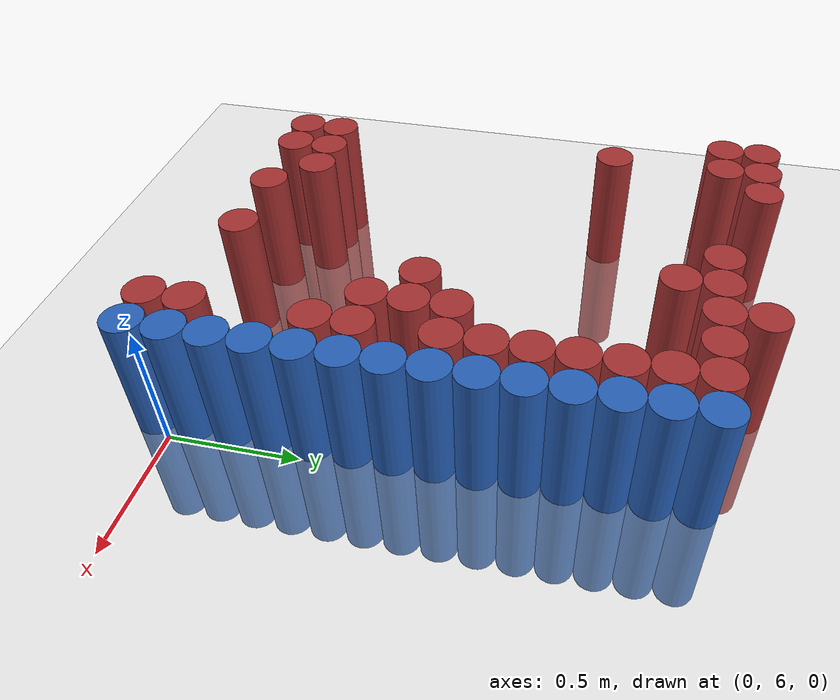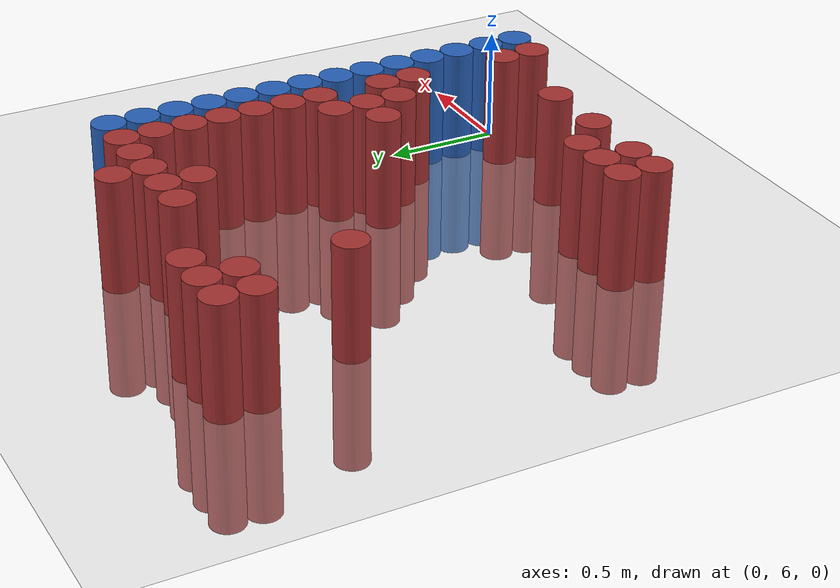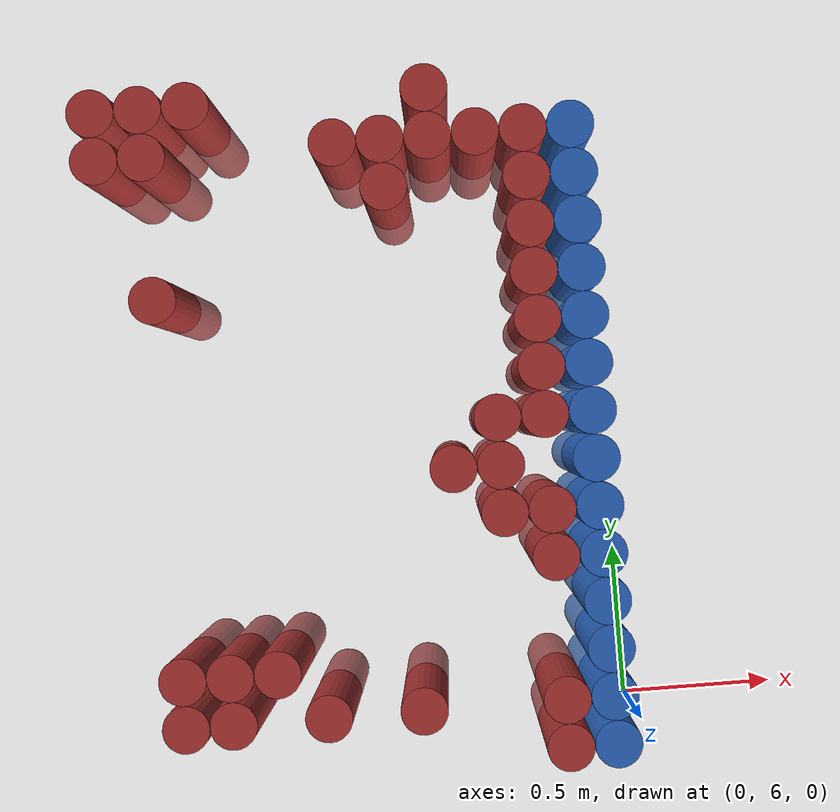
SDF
<sdf version="1.6">
 <world name="default">
  <model name="ground_plane">
   <static>1</static>
   <link name="link">
    <collision name="collision">
     <geometry><plane><normal>0 0 1</normal><size>100 100</size></plane></geometry>
     <surface><friction><ode><mu>100</mu><mu2>50</mu2></ode></friction></surface>
    </collision>
    <visual name="visual">
     <cast_shadows>0</cast_shadows>
     <geometry><plane><normal>0 0 1</normal><size>100 100</size></plane></geometry>
     <material>
      <script><uri>file://media/materials/scripts/gazebo.material</uri><name>Gazebo/Grey</name></script>
     </material>
    </visual>
   </link>
  </model>
  <model name="unit_cylinder_218">
   <static>1</static>
   <pose>-1.575000 7.875000 0.000000 0.000000 0.000000 0.000000</pose>
   <link name="link">
    <inertial>
     <mass>1</mass>
     <inertia><ixx>0.145833</ixx><ixy>0</ixy><ixz>0</ixz><iyy>0.145833</iyy><iyz>0</iyz><izz>0.125</izz></inertia>
    </inertial>
    <collision name="collision">
     <geometry><cylinder><radius>0.075000</radius><length>1</length></cylinder></geometry>
    </collision>
    <visual name="visual">
     <geometry><cylinder><radius>0.075000</radius><length>1</length></cylinder></geometry>
     <material>
      <ambient>0.648000 0.192000 0.192000 1</ambient>
      <diffuse>0.648000 0.192000 0.192000 1</diffuse>
     </material>
     <material>
      <script><name>Gazebo/Grey</name><uri>file://media/materials/scripts/gazebo.material</uri></script>
     </material>
    </visual>
   </link>
  </model>
  <model name="unit_cylinder_219">
   <static>1</static>
   <pose>-1.575000 8.025000 0.000000 0.000000 0.000000 0.000000</pose>
   <link name="link">
    <inertial>
     <mass>1</mass>
     <inertia><ixx>0.145833</ixx><ixy>0</ixy><ixz>0</ixz><iyy>0.145833</iyy><iyz>0</iyz><izz>0.125</izz></inertia>
    </inertial>
    <collision name="collision">
     <geometry><cylinder><radius>0.075000</radius><length>1</length></cylinder></geometry>
    </collision>
    <visual name="visual">
     <geometry><cylinder><radius>0.075000</radius><length>1</length></cylinder></geometry>
     <material>
      <ambient>0.648000 0.192000 0.192000 1</ambient>
      <diffuse>0.648000 0.192000 0.192000 1</diffuse>
     </material>
     <material>
      <script><name>Gazebo/Grey</name><uri>file://media/materials/scripts/gazebo.material</uri></script>
     </material>
    </visual>
   </link>
  </model>
  <model name="unit_cylinder_227">
   <static>1</static>
   <pose>-1.425000 6.075000 0.000000 0.000000 0.000000 0.000000</pose>
   <link name="link">
    <inertial>
     <mass>1</mass>
     <inertia><ixx>0.145833</ixx><ixy>0</ixy><ixz>0</ixz><iyy>0.145833</iyy><iyz>0</iyz><izz>0.125</izz></inertia>
    </inertial>
    <collision name="collision">
     <geometry><cylinder><radius>0.075000</radius><length>1</length></cylinder></geometry>
    </collision>
    <visual name="visual">
     <geometry><cylinder><radius>0.075000</radius><length>1</length></cylinder></geometry>
     <material>
      <ambient>0.648000 0.192000 0.192000 1</ambient>
      <diffuse>0.648000 0.192000 0.192000 1</diffuse>
     </material>
     <material>
      <script><name>Gazebo/Grey</name><uri>file://media/materials/scripts/gazebo.material</uri></script>
     </material>
    </visual>
   </link>
  </model>
  <model name="unit_cylinder_228">
   <static>1</static>
   <pose>-1.425000 6.225000 0.000000 0.000000 0.000000 0.000000</pose>
   <link name="link">
    <inertial>
     <mass>1</mass>
     <inertia><ixx>0.145833</ixx><ixy>0</ixy><ixz>0</ixz><iyy>0.145833</iyy><iyz>0</iyz><izz>0.125</izz></inertia>
    </inertial>
    <collision name="collision">
     <geometry><cylinder><radius>0.075000</radius><length>1</length></cylinder></geometry>
    </collision>
    <visual name="visual">
     <geometry><cylinder><radius>0.075000</radius><length>1</length></cylinder></geometry>
     <material>
      <ambient>0.648000 0.192000 0.192000 1</ambient>
      <diffuse>0.648000 0.192000 0.192000 1</diffuse>
     </material>
     <material>
      <script><name>Gazebo/Grey</name><uri>file://media/materials/scripts/gazebo.material</uri></script>
     </material>
    </visual>
   </link>
  </model>
  <model name="unit_cylinder_229">
   <static>1</static>
   <pose>-1.425000 7.425000 0.000000 0.000000 0.000000 0.000000</pose>
   <link name="link">
    <inertial>
     <mass>1</mass>
     <inertia><ixx>0.145833</ixx><ixy>0</ixy><ixz>0</ixz><iyy>0.145833</iyy><iyz>0</iyz><izz>0.125</izz></inertia>
    </inertial>
    <collision name="collision">
     <geometry><cylinder><radius>0.075000</radius><length>1</length></cylinder></geometry>
    </collision>
    <visual name="visual">
     <geometry><cylinder><radius>0.075000</radius><length>1</length></cylinder></geometry>
     <material>
      <ambient>0.648000 0.192000 0.192000 1</ambient>
      <diffuse>0.648000 0.192000 0.192000 1</diffuse>
     </material>
     <material>
      <script><name>Gazebo/Grey</name><uri>file://media/materials/scripts/gazebo.material</uri></script>
     </material>
    </visual>
   </link>
  </model>
  <model name="unit_cylinder_230">
   <static>1</static>
   <pose>-1.425000 7.875000 0.000000 0.000000 0.000000 0.000000</pose>
   <link name="link">
    <inertial>
     <mass>1</mass>
     <inertia><ixx>0.145833</ixx><ixy>0</ixy><ixz>0</ixz><iyy>0.145833</iyy><iyz>0</iyz><izz>0.125</izz></inertia>
    </inertial>
    <collision name="collision">
     <geometry><cylinder><radius>0.075000</radius><length>1</length></cylinder></geometry>
    </collision>
    <visual name="visual">
     <geometry><cylinder><radius>0.075000</radius><length>1</length></cylinder></geometry>
     <material>
      <ambient>0.648000 0.192000 0.192000 1</ambient>
      <diffuse>0.648000 0.192000 0.192000 1</diffuse>
     </material>
     <material>
      <script><name>Gazebo/Grey</name><uri>file://media/materials/scripts/gazebo.material</uri></script>
     </material>
    </visual>
   </link>
  </model>
  <model name="unit_cylinder_231">
   <static>1</static>
   <pose>-1.425000 8.025000 0.000000 0.000000 0.000000 0.000000</pose>
   <link name="link">
    <inertial>
     <mass>1</mass>
     <inertia><ixx>0.145833</ixx><ixy>0</ixy><ixz>0</ixz><iyy>0.145833</iyy><iyz>0</iyz><izz>0.125</izz></inertia>
    </inertial>
    <collision name="collision">
     <geometry><cylinder><radius>0.075000</radius><length>1</length></cylinder></geometry>
    </collision>
    <visual name="visual">
     <geometry><cylinder><radius>0.075000</radius><length>1</length></cylinder></geometry>
     <material>
      <ambient>0.648000 0.192000 0.192000 1</ambient>
      <diffuse>0.648000 0.192000 0.192000 1</diffuse>
     </material>
     <material>
      <script><name>Gazebo/Grey</name><uri>file://media/materials/scripts/gazebo.material</uri></script>
     </material>
    </visual>
   </link>
  </model>
  <model name="unit_cylinder_236">
   <static>1</static>
   <pose>-1.275000 6.075000 0.000000 0.000000 0.000000 0.000000</pose>
   <link name="link">
    <inertial>
     <mass>1</mass>
     <inertia><ixx>0.145833</ixx><ixy>0</ixy><ixz>0</ixz><iyy>0.145833</iyy><iyz>0</iyz><izz>0.125</izz></inertia>
    </inertial>
    <collision name="collision">
     <geometry><cylinder><radius>0.075000</radius><length>1</length></cylinder></geometry>
    </collision>
    <visual name="visual">
     <geometry><cylinder><radius>0.075000</radius><length>1</length></cylinder></geometry>
     <material>
      <ambient>0.648000 0.192000 0.192000 1</ambient>
      <diffuse>0.648000 0.192000 0.192000 1</diffuse>
     </material>
     <material>
      <script><name>Gazebo/Grey</name><uri>file://media/materials/scripts/gazebo.material</uri></script>
     </material>
    </visual>
   </link>
  </model>
  <model name="unit_cylinder_237">
   <static>1</static>
   <pose>-1.275000 6.225000 0.000000 0.000000 0.000000 0.000000</pose>
   <link name="link">
    <inertial>
     <mass>1</mass>
     <inertia><ixx>0.145833</ixx><ixy>0</ixy><ixz>0</ixz><iyy>0.145833</iyy><iyz>0</iyz><izz>0.125</izz></inertia>
    </inertial>
    <collision name="collision">
     <geometry><cylinder><radius>0.075000</radius><length>1</length></cylinder></geometry>
    </collision>
    <visual name="visual">
     <geometry><cylinder><radius>0.075000</radius><length>1</length></cylinder></geometry>
     <material>
      <ambient>0.648000 0.192000 0.192000 1</ambient>
      <diffuse>0.648000 0.192000 0.192000 1</diffuse>
     </material>
     <material>
      <script><name>Gazebo/Grey</name><uri>file://media/materials/scripts/gazebo.material</uri></script>
     </material>
    </visual>
   </link>
  </model>
  <model name="unit_cylinder_238">
   <static>1</static>
   <pose>-1.275000 8.025000 0.000000 0.000000 0.000000 0.000000</pose>
   <link name="link">
    <inertial>
     <mass>1</mass>
     <inertia><ixx>0.145833</ixx><ixy>0</ixy><ixz>0</ixz><iyy>0.145833</iyy><iyz>0</iyz><izz>0.125</izz></inertia>
    </inertial>
    <collision name="collision">
     <geometry><cylinder><radius>0.075000</radius><length>1</length></cylinder></geometry>
    </collision>
    <visual name="visual">
     <geometry><cylinder><radius>0.075000</radius><length>1</length></cylinder></geometry>
     <material>
      <ambient>0.648000 0.192000 0.192000 1</ambient>
      <diffuse>0.648000 0.192000 0.192000 1</diffuse>
     </material>
     <material>
      <script><name>Gazebo/Grey</name><uri>file://media/materials/scripts/gazebo.material</uri></script>
     </material>
    </visual>
   </link>
  </model>
  <model name="unit_cylinder_243">
   <static>1</static>
   <pose>-1.125000 6.225000 0.000000 0.000000 0.000000 0.000000</pose>
   <link name="link">
    <inertial>
     <mass>1</mass>
     <inertia><ixx>0.145833</ixx><ixy>0</ixy><ixz>0</ixz><iyy>0.145833</iyy><iyz>0</iyz><izz>0.125</izz></inertia>
    </inertial>
    <collision name="collision">
     <geometry><cylinder><radius>0.075000</radius><length>1</length></cylinder></geometry>
    </collision>
    <visual name="visual">
     <geometry><cylinder><radius>0.075000</radius><length>1</length></cylinder></geometry>
     <material>
      <ambient>0.648000 0.192000 0.192000 1</ambient>
      <diffuse>0.648000 0.192000 0.192000 1</diffuse>
     </material>
     <material>
      <script><name>Gazebo/Grey</name><uri>file://media/materials/scripts/gazebo.material</uri></script>
     </material>
    </visual>
   </link>
  </model>
  <model name="unit_cylinder_245">
   <static>1</static>
   <pose>-0.975000 6.075000 0.000000 0.000000 0.000000 0.000000</pose>
   <link name="link">
    <inertial>
     <mass>1</mass>
     <inertia><ixx>0.145833</ixx><ixy>0</ixy><ixz>0</ixz><iyy>0.145833</iyy><iyz>0</iyz><izz>0.125</izz></inertia>
    </inertial>
    <collision name="collision">
     <geometry><cylinder><radius>0.075000</radius><length>1</length></cylinder></geometry>
    </collision>
    <visual name="visual">
     <geometry><cylinder><radius>0.075000</radius><length>1</length></cylinder></geometry>
     <material>
      <ambient>0.648000 0.192000 0.192000 1</ambient>
      <diffuse>0.648000 0.192000 0.192000 1</diffuse>
     </material>
     <material>
      <script><name>Gazebo/Grey</name><uri>file://media/materials/scripts/gazebo.material</uri></script>
     </material>
    </visual>
   </link>
  </model>
  <model name="unit_cylinder_248">
   <static>1</static>
   <pose>-0.825000 7.875000 0.000000 0.000000 0.000000 0.000000</pose>
   <link name="link">
    <inertial>
     <mass>1</mass>
     <inertia><ixx>0.145833</ixx><ixy>0</ixy><ixz>0</ixz><iyy>0.145833</iyy><iyz>0</iyz><izz>0.125</izz></inertia>
    </inertial>
    <collision name="collision">
     <geometry><cylinder><radius>0.075000</radius><length>1</length></cylinder></geometry>
    </collision>
    <visual name="visual">
     <geometry><cylinder><radius>0.075000</radius><length>1</length></cylinder></geometry>
     <material>
      <ambient>0.648000 0.192000 0.192000 1</ambient>
      <diffuse>0.648000 0.192000 0.192000 1</diffuse>
     </material>
     <material>
      <script><name>Gazebo/Grey</name><uri>file://media/materials/scripts/gazebo.material</uri></script>
     </material>
    </visual>
   </link>
  </model>
  <model name="unit_cylinder_253">
   <static>1</static>
   <pose>-0.675000 6.075000 0.000000 0.000000 0.000000 0.000000</pose>
   <link name="link">
    <inertial>
     <mass>1</mass>
     <inertia><ixx>0.145833</ixx><ixy>0</ixy><ixz>0</ixz><iyy>0.145833</iyy><iyz>0</iyz><izz>0.125</izz></inertia>
    </inertial>
    <collision name="collision">
     <geometry><cylinder><radius>0.075000</radius><length>1</length></cylinder></geometry>
    </collision>
    <visual name="visual">
     <geometry><cylinder><radius>0.075000</radius><length>1</length></cylinder></geometry>
     <material>
      <ambient>0.648000 0.192000 0.192000 1</ambient>
      <diffuse>0.648000 0.192000 0.192000 1</diffuse>
     </material>
     <material>
      <script><name>Gazebo/Grey</name><uri>file://media/materials/scripts/gazebo.material</uri></script>
     </material>
    </visual>
   </link>
  </model>
  <model name="unit_cylinder_254">
   <static>1</static>
   <pose>-0.675000 7.725000 0.000000 0.000000 0.000000 0.000000</pose>
   <link name="link">
    <inertial>
     <mass>1</mass>
     <inertia><ixx>0.145833</ixx><ixy>0</ixy><ixz>0</ixz><iyy>0.145833</iyy><iyz>0</iyz><izz>0.125</izz></inertia>
    </inertial>
    <collision name="collision">
     <geometry><cylinder><radius>0.075000</radius><length>1</length></cylinder></geometry>
    </collision>
    <visual name="visual">
     <geometry><cylinder><radius>0.075000</radius><length>1</length></cylinder></geometry>
     <material>
      <ambient>0.648000 0.192000 0.192000 1</ambient>
      <diffuse>0.648000 0.192000 0.192000 1</diffuse>
     </material>
     <material>
      <script><name>Gazebo/Grey</name><uri>file://media/materials/scripts/gazebo.material</uri></script>
     </material>
    </visual>
   </link>
  </model>
  <model name="unit_cylinder_255">
   <static>1</static>
   <pose>-0.675000 7.875000 0.000000 0.000000 0.000000 0.000000</pose>
   <link name="link">
    <inertial>
     <mass>1</mass>
     <inertia><ixx>0.145833</ixx><ixy>0</ixy><ixz>0</ixz><iyy>0.145833</iyy><iyz>0</iyz><izz>0.125</izz></inertia>
    </inertial>
    <collision name="collision">
     <geometry><cylinder><radius>0.075000</radius><length>1</length></cylinder></geometry>
    </collision>
    <visual name="visual">
     <geometry><cylinder><radius>0.075000</radius><length>1</length></cylinder></geometry>
     <material>
      <ambient>0.648000 0.192000 0.192000 1</ambient>
      <diffuse>0.648000 0.192000 0.192000 1</diffuse>
     </material>
     <material>
      <script><name>Gazebo/Grey</name><uri>file://media/materials/scripts/gazebo.material</uri></script>
     </material>
    </visual>
   </link>
  </model>
  <model name="unit_cylinder_263">
   <static>1</static>
   <pose>-0.525000 6.825000 0.000000 0.000000 0.000000 0.000000</pose>
   <link name="link">
    <inertial>
     <mass>1</mass>
     <inertia><ixx>0.145833</ixx><ixy>0</ixy><ixz>0</ixz><iyy>0.145833</iyy><iyz>0</iyz><izz>0.125</izz></inertia>
    </inertial>
    <collision name="collision">
     <geometry><cylinder><radius>0.075000</radius><length>1</length></cylinder></geometry>
    </collision>
    <visual name="visual">
     <geometry><cylinder><radius>0.075000</radius><length>1</length></cylinder></geometry>
     <material>
      <ambient>0.648000 0.192000 0.192000 1</ambient>
      <diffuse>0.648000 0.192000 0.192000 1</diffuse>
     </material>
     <material>
      <script><name>Gazebo/Grey</name><uri>file://media/materials/scripts/gazebo.material</uri></script>
     </material>
    </visual>
   </link>
  </model>
  <model name="unit_cylinder_264">
   <static>1</static>
   <pose>-0.525000 7.875000 0.000000 0.000000 0.000000 0.000000</pose>
   <link name="link">
    <inertial>
     <mass>1</mass>
     <inertia><ixx>0.145833</ixx><ixy>0</ixy><ixz>0</ixz><iyy>0.145833</iyy><iyz>0</iyz><izz>0.125</izz></inertia>
    </inertial>
    <collision name="collision">
     <geometry><cylinder><radius>0.075000</radius><length>1</length></cylinder></geometry>
    </collision>
    <visual name="visual">
     <geometry><cylinder><radius>0.075000</radius><length>1</length></cylinder></geometry>
     <material>
      <ambient>0.648000 0.192000 0.192000 1</ambient>
      <diffuse>0.648000 0.192000 0.192000 1</diffuse>
     </material>
     <material>
      <script><name>Gazebo/Grey</name><uri>file://media/materials/scripts/gazebo.material</uri></script>
     </material>
    </visual>
   </link>
  </model>
  <model name="unit_cylinder_265">
   <static>1</static>
   <pose>-0.525000 8.025000 0.000000 0.000000 0.000000 0.000000</pose>
   <link name="link">
    <inertial>
     <mass>1</mass>
     <inertia><ixx>0.145833</ixx><ixy>0</ixy><ixz>0</ixz><iyy>0.145833</iyy><iyz>0</iyz><izz>0.125</izz></inertia>
    </inertial>
    <collision name="collision">
     <geometry><cylinder><radius>0.075000</radius><length>1</length></cylinder></geometry>
    </collision>
    <visual name="visual">
     <geometry><cylinder><radius>0.075000</radius><length>1</length></cylinder></geometry>
     <material>
      <ambient>0.648000 0.192000 0.192000 1</ambient>
      <diffuse>0.648000 0.192000 0.192000 1</diffuse>
     </material>
     <material>
      <script><name>Gazebo/Grey</name><uri>file://media/materials/scripts/gazebo.material</uri></script>
     </material>
    </visual>
   </link>
  </model>
  <model name="unit_cylinder_273">
   <static>1</static>
   <pose>-0.375000 6.675000 0.000000 0.000000 0.000000 0.000000</pose>
   <link name="link">
    <inertial>
     <mass>1</mass>
     <inertia><ixx>0.145833</ixx><ixy>0</ixy><ixz>0</ixz><iyy>0.145833</iyy><iyz>0</iyz><izz>0.125</izz></inertia>
    </inertial>
    <collision name="collision">
     <geometry><cylinder><radius>0.075000</radius><length>1</length></cylinder></geometry>
    </collision>
    <visual name="visual">
     <geometry><cylinder><radius>0.075000</radius><length>1</length></cylinder></geometry>
     <material>
      <ambient>0.648000 0.192000 0.192000 1</ambient>
      <diffuse>0.648000 0.192000 0.192000 1</diffuse>
     </material>
     <material>
      <script><name>Gazebo/Grey</name><uri>file://media/materials/scripts/gazebo.material</uri></script>
     </material>
    </visual>
   </link>
  </model>
  <model name="unit_cylinder_274">
   <static>1</static>
   <pose>-0.375000 6.825000 0.000000 0.000000 0.000000 0.000000</pose>
   <link name="link">
    <inertial>
     <mass>1</mass>
     <inertia><ixx>0.145833</ixx><ixy>0</ixy><ixz>0</ixz><iyy>0.145833</iyy><iyz>0</iyz><izz>0.125</izz></inertia>
    </inertial>
    <collision name="collision">
     <geometry><cylinder><radius>0.075000</radius><length>1</length></cylinder></geometry>
    </collision>
    <visual name="visual">
     <geometry><cylinder><radius>0.075000</radius><length>1</length></cylinder></geometry>
     <material>
      <ambient>0.648000 0.192000 0.192000 1</ambient>
      <diffuse>0.648000 0.192000 0.192000 1</diffuse>
     </material>
     <material>
      <script><name>Gazebo/Grey</name><uri>file://media/materials/scripts/gazebo.material</uri></script>
     </material>
    </visual>
   </link>
  </model>
  <model name="unit_cylinder_275">
   <static>1</static>
   <pose>-0.375000 6.975000 0.000000 0.000000 0.000000 0.000000</pose>
   <link name="link">
    <inertial>
     <mass>1</mass>
     <inertia><ixx>0.145833</ixx><ixy>0</ixy><ixz>0</ixz><iyy>0.145833</iyy><iyz>0</iyz><izz>0.125</izz></inertia>
    </inertial>
    <collision name="collision">
     <geometry><cylinder><radius>0.075000</radius><length>1</length></cylinder></geometry>
    </collision>
    <visual name="visual">
     <geometry><cylinder><radius>0.075000</radius><length>1</length></cylinder></geometry>
     <material>
      <ambient>0.648000 0.192000 0.192000 1</ambient>
      <diffuse>0.648000 0.192000 0.192000 1</diffuse>
     </material>
     <material>
      <script><name>Gazebo/Grey</name><uri>file://media/materials/scripts/gazebo.material</uri></script>
     </material>
    </visual>
   </link>
  </model>
  <model name="unit_cylinder_276">
   <static>1</static>
   <pose>-0.375000 7.875000 0.000000 0.000000 0.000000 0.000000</pose>
   <link name="link">
    <inertial>
     <mass>1</mass>
     <inertia><ixx>0.145833</ixx><ixy>0</ixy><ixz>0</ixz><iyy>0.145833</iyy><iyz>0</iyz><izz>0.125</izz></inertia>
    </inertial>
    <collision name="collision">
     <geometry><cylinder><radius>0.075000</radius><length>1</length></cylinder></geometry>
    </collision>
    <visual name="visual">
     <geometry><cylinder><radius>0.075000</radius><length>1</length></cylinder></geometry>
     <material>
      <ambient>0.648000 0.192000 0.192000 1</ambient>
      <diffuse>0.648000 0.192000 0.192000 1</diffuse>
     </material>
     <material>
      <script><name>Gazebo/Grey</name><uri>file://media/materials/scripts/gazebo.material</uri></script>
     </material>
    </visual>
   </link>
  </model>
  <model name="unit_cylinder_288">
   <static>1</static>
   <pose>-0.225000 5.925000 0.000000 0.000000 0.000000 0.000000</pose>
   <link name="link">
    <inertial>
     <mass>1</mass>
     <inertia><ixx>0.145833</ixx><ixy>0</ixy><ixz>0</ixz><iyy>0.145833</iyy><iyz>0</iyz><izz>0.125</izz></inertia>
    </inertial>
    <collision name="collision">
     <geometry><cylinder><radius>0.075000</radius><length>1</length></cylinder></geometry>
    </collision>
    <visual name="visual">
     <geometry><cylinder><radius>0.075000</radius><length>1</length></cylinder></geometry>
     <material>
      <ambient>0.648000 0.192000 0.192000 1</ambient>
      <diffuse>0.648000 0.192000 0.192000 1</diffuse>
     </material>
     <material>
      <script><name>Gazebo/Grey</name><uri>file://media/materials/scripts/gazebo.material</uri></script>
     </material>
    </visual>
   </link>
  </model>
  <model name="unit_cylinder_289">
   <static>1</static>
   <pose>-0.225000 6.075000 0.000000 0.000000 0.000000 0.000000</pose>
   <link name="link">
    <inertial>
     <mass>1</mass>
     <inertia><ixx>0.145833</ixx><ixy>0</ixy><ixz>0</ixz><iyy>0.145833</iyy><iyz>0</iyz><izz>0.125</izz></inertia>
    </inertial>
    <collision name="collision">
     <geometry><cylinder><radius>0.075000</radius><length>1</length></cylinder></geometry>
    </collision>
    <visual name="visual">
     <geometry><cylinder><radius>0.075000</radius><length>1</length></cylinder></geometry>
     <material>
      <ambient>0.648000 0.192000 0.192000 1</ambient>
      <diffuse>0.648000 0.192000 0.192000 1</diffuse>
     </material>
     <material>
      <script><name>Gazebo/Grey</name><uri>file://media/materials/scripts/gazebo.material</uri></script>
     </material>
    </visual>
   </link>
  </model>
  <model name="unit_cylinder_290">
   <static>1</static>
   <pose>-0.225000 6.525000 0.000000 0.000000 0.000000 0.000000</pose>
   <link name="link">
    <inertial>
     <mass>1</mass>
     <inertia><ixx>0.145833</ixx><ixy>0</ixy><ixz>0</ixz><iyy>0.145833</iyy><iyz>0</iyz><izz>0.125</izz></inertia>
    </inertial>
    <collision name="collision">
     <geometry><cylinder><radius>0.075000</radius><length>1</length></cylinder></geometry>
    </collision>
    <visual name="visual">
     <geometry><cylinder><radius>0.075000</radius><length>1</length></cylinder></geometry>
     <material>
      <ambient>0.648000 0.192000 0.192000 1</ambient>
      <diffuse>0.648000 0.192000 0.192000 1</diffuse>
     </material>
     <material>
      <script><name>Gazebo/Grey</name><uri>file://media/materials/scripts/gazebo.material</uri></script>
     </material>
    </visual>
   </link>
  </model>
  <model name="unit_cylinder_291">
   <static>1</static>
   <pose>-0.225000 6.675000 0.000000 0.000000 0.000000 0.000000</pose>
   <link name="link">
    <inertial>
     <mass>1</mass>
     <inertia><ixx>0.145833</ixx><ixy>0</ixy><ixz>0</ixz><iyy>0.145833</iyy><iyz>0</iyz><izz>0.125</izz></inertia>
    </inertial>
    <collision name="collision">
     <geometry><cylinder><radius>0.075000</radius><length>1</length></cylinder></geometry>
    </collision>
    <visual name="visual">
     <geometry><cylinder><radius>0.075000</radius><length>1</length></cylinder></geometry>
     <material>
      <ambient>0.648000 0.192000 0.192000 1</ambient>
      <diffuse>0.648000 0.192000 0.192000 1</diffuse>
     </material>
     <material>
      <script><name>Gazebo/Grey</name><uri>file://media/materials/scripts/gazebo.material</uri></script>
     </material>
    </visual>
   </link>
  </model>
  <model name="unit_cylinder_292">
   <static>1</static>
   <pose>-0.225000 6.975000 0.000000 0.000000 0.000000 0.000000</pose>
   <link name="link">
    <inertial>
     <mass>1</mass>
     <inertia><ixx>0.145833</ixx><ixy>0</ixy><ixz>0</ixz><iyy>0.145833</iyy><iyz>0</iyz><izz>0.125</izz></inertia>
    </inertial>
    <collision name="collision">
     <geometry><cylinder><radius>0.075000</radius><length>1</length></cylinder></geometry>
    </collision>
    <visual name="visual">
     <geometry><cylinder><radius>0.075000</radius><length>1</length></cylinder></geometry>
     <material>
      <ambient>0.648000 0.192000 0.192000 1</ambient>
      <diffuse>0.648000 0.192000 0.192000 1</diffuse>
     </material>
     <material>
      <script><name>Gazebo/Grey</name><uri>file://media/materials/scripts/gazebo.material</uri></script>
     </material>
    </visual>
   </link>
  </model>
  <model name="unit_cylinder_293">
   <static>1</static>
   <pose>-0.225000 7.125000 0.000000 0.000000 0.000000 0.000000</pose>
   <link name="link">
    <inertial>
     <mass>1</mass>
     <inertia><ixx>0.145833</ixx><ixy>0</ixy><ixz>0</ixz><iyy>0.145833</iyy><iyz>0</iyz><izz>0.125</izz></inertia>
    </inertial>
    <collision name="collision">
     <geometry><cylinder><radius>0.075000</radius><length>1</length></cylinder></geometry>
    </collision>
    <visual name="visual">
     <geometry><cylinder><radius>0.075000</radius><length>1</length></cylinder></geometry>
     <material>
      <ambient>0.648000 0.192000 0.192000 1</ambient>
      <diffuse>0.648000 0.192000 0.192000 1</diffuse>
     </material>
     <material>
      <script><name>Gazebo/Grey</name><uri>file://media/materials/scripts/gazebo.material</uri></script>
     </material>
    </visual>
   </link>
  </model>
  <model name="unit_cylinder_294">
   <static>1</static>
   <pose>-0.225000 7.275000 0.000000 0.000000 0.000000 0.000000</pose>
   <link name="link">
    <inertial>
     <mass>1</mass>
     <inertia><ixx>0.145833</ixx><ixy>0</ixy><ixz>0</ixz><iyy>0.145833</iyy><iyz>0</iyz><izz>0.125</izz></inertia>
    </inertial>
    <collision name="collision">
     <geometry><cylinder><radius>0.075000</radius><length>1</length></cylinder></geometry>
    </collision>
    <visual name="visual">
     <geometry><cylinder><radius>0.075000</radius><length>1</length></cylinder></geometry>
     <material>
      <ambient>0.648000 0.192000 0.192000 1</ambient>
      <diffuse>0.648000 0.192000 0.192000 1</diffuse>
     </material>
     <material>
      <script><name>Gazebo/Grey</name><uri>file://media/materials/scripts/gazebo.material</uri></script>
     </material>
    </visual>
   </link>
  </model>
  <model name="unit_cylinder_295">
   <static>1</static>
   <pose>-0.225000 7.425000 0.000000 0.000000 0.000000 0.000000</pose>
   <link name="link">
    <inertial>
     <mass>1</mass>
     <inertia><ixx>0.145833</ixx><ixy>0</ixy><ixz>0</ixz><iyy>0.145833</iyy><iyz>0</iyz><izz>0.125</izz></inertia>
    </inertial>
    <collision name="collision">
     <geometry><cylinder><radius>0.075000</radius><length>1</length></cylinder></geometry>
    </collision>
    <visual name="visual">
     <geometry><cylinder><radius>0.075000</radius><length>1</length></cylinder></geometry>
     <material>
      <ambient>0.648000 0.192000 0.192000 1</ambient>
      <diffuse>0.648000 0.192000 0.192000 1</diffuse>
     </material>
     <material>
      <script><name>Gazebo/Grey</name><uri>file://media/materials/scripts/gazebo.material</uri></script>
     </material>
    </visual>
   </link>
  </model>
  <model name="unit_cylinder_296">
   <static>1</static>
   <pose>-0.225000 7.575000 0.000000 0.000000 0.000000 0.000000</pose>
   <link name="link">
    <inertial>
     <mass>1</mass>
     <inertia><ixx>0.145833</ixx><ixy>0</ixy><ixz>0</ixz><iyy>0.145833</iyy><iyz>0</iyz><izz>0.125</izz></inertia>
    </inertial>
    <collision name="collision">
     <geometry><cylinder><radius>0.075000</radius><length>1</length></cylinder></geometry>
    </collision>
    <visual name="visual">
     <geometry><cylinder><radius>0.075000</radius><length>1</length></cylinder></geometry>
     <material>
      <ambient>0.648000 0.192000 0.192000 1</ambient>
      <diffuse>0.648000 0.192000 0.192000 1</diffuse>
     </material>
     <material>
      <script><name>Gazebo/Grey</name><uri>file://media/materials/scripts/gazebo.material</uri></script>
     </material>
    </visual>
   </link>
  </model>
  <model name="unit_cylinder_297">
   <static>1</static>
   <pose>-0.225000 7.725000 0.000000 0.000000 0.000000 0.000000</pose>
   <link name="link">
    <inertial>
     <mass>1</mass>
     <inertia><ixx>0.145833</ixx><ixy>0</ixy><ixz>0</ixz><iyy>0.145833</iyy><iyz>0</iyz><izz>0.125</izz></inertia>
    </inertial>
    <collision name="collision">
     <geometry><cylinder><radius>0.075000</radius><length>1</length></cylinder></geometry>
    </collision>
    <visual name="visual">
     <geometry><cylinder><radius>0.075000</radius><length>1</length></cylinder></geometry>
     <material>
      <ambient>0.648000 0.192000 0.192000 1</ambient>
      <diffuse>0.648000 0.192000 0.192000 1</diffuse>
     </material>
     <material>
      <script><name>Gazebo/Grey</name><uri>file://media/materials/scripts/gazebo.material</uri></script>
     </material>
    </visual>
   </link>
  </model>
  <model name="unit_cylinder_298">
   <static>1</static>
   <pose>-0.225000 7.875000 0.000000 0.000000 0.000000 0.000000</pose>
   <link name="link">
    <inertial>
     <mass>1</mass>
     <inertia><ixx>0.145833</ixx><ixy>0</ixy><ixz>0</ixz><iyy>0.145833</iyy><iyz>0</iyz><izz>0.125</izz></inertia>
    </inertial>
    <collision name="collision">
     <geometry><cylinder><radius>0.075000</radius><length>1</length></cylinder></geometry>
    </collision>
    <visual name="visual">
     <geometry><cylinder><radius>0.075000</radius><length>1</length></cylinder></geometry>
     <material>
      <ambient>0.648000 0.192000 0.192000 1</ambient>
      <diffuse>0.648000 0.192000 0.192000 1</diffuse>
     </material>
     <material>
      <script><name>Gazebo/Grey</name><uri>file://media/materials/scripts/gazebo.material</uri></script>
     </material>
    </visual>
   </link>
  </model>
  <model name="unit_cylinder_309">
   <static>1</static>
   <pose>-0.075000 5.925000 0.000000 0.000000 0.000000 0.000000</pose>
   <link name="link">
    <inertial>
     <mass>1</mass>
     <inertia><ixx>0.145833</ixx><ixy>0</ixy><ixz>0</ixz><iyy>0.145833</iyy><iyz>0</iyz><izz>0.125</izz></inertia>
    </inertial>
    <collision name="collision">
     <geometry><cylinder><radius>0.075000</radius><length>1</length></cylinder></geometry>
    </collision>
    <visual name="visual">
     <geometry><cylinder><radius>0.075000</radius><length>1</length></cylinder></geometry>
     <material>
      <ambient>0.152000 0.379000 0.720000 1</ambient>
      <diffuse>0.152000 0.379000 0.720000 1</diffuse>
     </material>
     <material>
      <script><name>Gazebo/Grey</name><uri>file://media/materials/scripts/gazebo.material</uri></script>
     </material>
    </visual>
   </link>
  </model>
  <model name="unit_cylinder_310">
   <static>1</static>
   <pose>-0.075000 6.075000 0.000000 0.000000 0.000000 0.000000</pose>
   <link name="link">
    <inertial>
     <mass>1</mass>
     <inertia><ixx>0.145833</ixx><ixy>0</ixy><ixz>0</ixz><iyy>0.145833</iyy><iyz>0</iyz><izz>0.125</izz></inertia>
    </inertial>
    <collision name="collision">
     <geometry><cylinder><radius>0.075000</radius><length>1</length></cylinder></geometry>
    </collision>
    <visual name="visual">
     <geometry><cylinder><radius>0.075000</radius><length>1</length></cylinder></geometry>
     <material>
      <ambient>0.152000 0.379000 0.720000 1</ambient>
      <diffuse>0.152000 0.379000 0.720000 1</diffuse>
     </material>
     <material>
      <script><name>Gazebo/Grey</name><uri>file://media/materials/scripts/gazebo.material</uri></script>
     </material>
    </visual>
   </link>
  </model>
  <model name="unit_cylinder_311">
   <static>1</static>
   <pose>-0.075000 6.225000 0.000000 0.000000 0.000000 0.000000</pose>
   <link name="link">
    <inertial>
     <mass>1</mass>
     <inertia><ixx>0.145833</ixx><ixy>0</ixy><ixz>0</ixz><iyy>0.145833</iyy><iyz>0</iyz><izz>0.125</izz></inertia>
    </inertial>
    <collision name="collision">
     <geometry><cylinder><radius>0.075000</radius><length>1</length></cylinder></geometry>
    </collision>
    <visual name="visual">
     <geometry><cylinder><radius>0.075000</radius><length>1</length></cylinder></geometry>
     <material>
      <ambient>0.152000 0.379000 0.720000 1</ambient>
      <diffuse>0.152000 0.379000 0.720000 1</diffuse>
     </material>
     <material>
      <script><name>Gazebo/Grey</name><uri>file://media/materials/scripts/gazebo.material</uri></script>
     </material>
    </visual>
   </link>
  </model>
  <model name="unit_cylinder_312">
   <static>1</static>
   <pose>-0.075000 6.375000 0.000000 0.000000 0.000000 0.000000</pose>
   <link name="link">
    <inertial>
     <mass>1</mass>
     <inertia><ixx>0.145833</ixx><ixy>0</ixy><ixz>0</ixz><iyy>0.145833</iyy><iyz>0</iyz><izz>0.125</izz></inertia>
    </inertial>
    <collision name="collision">
     <geometry><cylinder><radius>0.075000</radius><length>1</length></cylinder></geometry>
    </collision>
    <visual name="visual">
     <geometry><cylinder><radius>0.075000</radius><length>1</length></cylinder></geometry>
     <material>
      <ambient>0.152000 0.379000 0.720000 1</ambient>
      <diffuse>0.152000 0.379000 0.720000 1</diffuse>
     </material>
     <material>
      <script><name>Gazebo/Grey</name><uri>file://media/materials/scripts/gazebo.material</uri></script>
     </material>
    </visual>
   </link>
  </model>
  <model name="unit_cylinder_313">
   <static>1</static>
   <pose>-0.075000 6.525000 0.000000 0.000000 0.000000 0.000000</pose>
   <link name="link">
    <inertial>
     <mass>1</mass>
     <inertia><ixx>0.145833</ixx><ixy>0</ixy><ixz>0</ixz><iyy>0.145833</iyy><iyz>0</iyz><izz>0.125</izz></inertia>
    </inertial>
    <collision name="collision">
     <geometry><cylinder><radius>0.075000</radius><length>1</length></cylinder></geometry>
    </collision>
    <visual name="visual">
     <geometry><cylinder><radius>0.075000</radius><length>1</length></cylinder></geometry>
     <material>
      <ambient>0.152000 0.379000 0.720000 1</ambient>
      <diffuse>0.152000 0.379000 0.720000 1</diffuse>
     </material>
     <material>
      <script><name>Gazebo/Grey</name><uri>file://media/materials/scripts/gazebo.material</uri></script>
     </material>
    </visual>
   </link>
  </model>
  <model name="unit_cylinder_314">
   <static>1</static>
   <pose>-0.075000 6.675000 0.000000 0.000000 0.000000 0.000000</pose>
   <link name="link">
    <inertial>
     <mass>1</mass>
     <inertia><ixx>0.145833</ixx><ixy>0</ixy><ixz>0</ixz><iyy>0.145833</iyy><iyz>0</iyz><izz>0.125</izz></inertia>
    </inertial>
    <collision name="collision">
     <geometry><cylinder><radius>0.075000</radius><length>1</length></cylinder></geometry>
    </collision>
    <visual name="visual">
     <geometry><cylinder><radius>0.075000</radius><length>1</length></cylinder></geometry>
     <material>
      <ambient>0.152000 0.379000 0.720000 1</ambient>
      <diffuse>0.152000 0.379000 0.720000 1</diffuse>
     </material>
     <material>
      <script><name>Gazebo/Grey</name><uri>file://media/materials/scripts/gazebo.material</uri></script>
     </material>
    </visual>
   </link>
  </model>
  <model name="unit_cylinder_315">
   <static>1</static>
   <pose>-0.075000 6.825000 0.000000 0.000000 0.000000 0.000000</pose>
   <link name="link">
    <inertial>
     <mass>1</mass>
     <inertia><ixx>0.145833</ixx><ixy>0</ixy><ixz>0</ixz><iyy>0.145833</iyy><iyz>0</iyz><izz>0.125</izz></inertia>
    </inertial>
    <collision name="collision">
     <geometry><cylinder><radius>0.075000</radius><length>1</length></cylinder></geometry>
    </collision>
    <visual name="visual">
     <geometry><cylinder><radius>0.075000</radius><length>1</length></cylinder></geometry>
     <material>
      <ambient>0.152000 0.379000 0.720000 1</ambient>
      <diffuse>0.152000 0.379000 0.720000 1</diffuse>
     </material>
     <material>
      <script><name>Gazebo/Grey</name><uri>file://media/materials/scripts/gazebo.material</uri></script>
     </material>
    </visual>
   </link>
  </model>
  <model name="unit_cylinder_316">
   <static>1</static>
   <pose>-0.075000 6.975000 0.000000 0.000000 0.000000 0.000000</pose>
   <link name="link">
    <inertial>
     <mass>1</mass>
     <inertia><ixx>0.145833</ixx><ixy>0</ixy><ixz>0</ixz><iyy>0.145833</iyy><iyz>0</iyz><izz>0.125</izz></inertia>
    </inertial>
    <collision name="collision">
     <geometry><cylinder><radius>0.075000</radius><length>1</length></cylinder></geometry>
    </collision>
    <visual name="visual">
     <geometry><cylinder><radius>0.075000</radius><length>1</length></cylinder></geometry>
     <material>
      <ambient>0.152000 0.379000 0.720000 1</ambient>
      <diffuse>0.152000 0.379000 0.720000 1</diffuse>
     </material>
     <material>
      <script><name>Gazebo/Grey</name><uri>file://media/materials/scripts/gazebo.material</uri></script>
     </material>
    </visual>
   </link>
  </model>
  <model name="unit_cylinder_317">
   <static>1</static>
   <pose>-0.075000 7.125000 0.000000 0.000000 0.000000 0.000000</pose>
   <link name="link">
    <inertial>
     <mass>1</mass>
     <inertia><ixx>0.145833</ixx><ixy>0</ixy><ixz>0</ixz><iyy>0.145833</iyy><iyz>0</iyz><izz>0.125</izz></inertia>
    </inertial>
    <collision name="collision">
     <geometry><cylinder><radius>0.075000</radius><length>1</length></cylinder></geometry>
    </collision>
    <visual name="visual">
     <geometry><cylinder><radius>0.075000</radius><length>1</length></cylinder></geometry>
     <material>
      <ambient>0.152000 0.379000 0.720000 1</ambient>
      <diffuse>0.152000 0.379000 0.720000 1</diffuse>
     </material>
     <material>
      <script><name>Gazebo/Grey</name><uri>file://media/materials/scripts/gazebo.material</uri></script>
     </material>
    </visual>
   </link>
  </model>
  <model name="unit_cylinder_318">
   <static>1</static>
   <pose>-0.075000 7.275000 0.000000 0.000000 0.000000 0.000000</pose>
   <link name="link">
    <inertial>
     <mass>1</mass>
     <inertia><ixx>0.145833</ixx><ixy>0</ixy><ixz>0</ixz><iyy>0.145833</iyy><iyz>0</iyz><izz>0.125</izz></inertia>
    </inertial>
    <collision name="collision">
     <geometry><cylinder><radius>0.075000</radius><length>1</length></cylinder></geometry>
    </collision>
    <visual name="visual">
     <geometry><cylinder><radius>0.075000</radius><length>1</length></cylinder></geometry>
     <material>
      <ambient>0.152000 0.379000 0.720000 1</ambient>
      <diffuse>0.152000 0.379000 0.720000 1</diffuse>
     </material>
     <material>
      <script><name>Gazebo/Grey</name><uri>file://media/materials/scripts/gazebo.material</uri></script>
     </material>
    </visual>
   </link>
  </model>
  <model name="unit_cylinder_319">
   <static>1</static>
   <pose>-0.075000 7.425000 0.000000 0.000000 0.000000 0.000000</pose>
   <link name="link">
    <inertial>
     <mass>1</mass>
     <inertia><ixx>0.145833</ixx><ixy>0</ixy><ixz>0</ixz><iyy>0.145833</iyy><iyz>0</iyz><izz>0.125</izz></inertia>
    </inertial>
    <collision name="collision">
     <geometry><cylinder><radius>0.075000</radius><length>1</length></cylinder></geometry>
    </collision>
    <visual name="visual">
     <geometry><cylinder><radius>0.075000</radius><length>1</length></cylinder></geometry>
     <material>
      <ambient>0.152000 0.379000 0.720000 1</ambient>
      <diffuse>0.152000 0.379000 0.720000 1</diffuse>
     </material>
     <material>
      <script><name>Gazebo/Grey</name><uri>file://media/materials/scripts/gazebo.material</uri></script>
     </material>
    </visual>
   </link>
  </model>
  <model name="unit_cylinder_320">
   <static>1</static>
   <pose>-0.075000 7.575000 0.000000 0.000000 0.000000 0.000000</pose>
   <link name="link">
    <inertial>
     <mass>1</mass>
     <inertia><ixx>0.145833</ixx><ixy>0</ixy><ixz>0</ixz><iyy>0.145833</iyy><iyz>0</iyz><izz>0.125</izz></inertia>
    </inertial>
    <collision name="collision">
     <geometry><cylinder><radius>0.075000</radius><length>1</length></cylinder></geometry>
    </collision>
    <visual name="visual">
     <geometry><cylinder><radius>0.075000</radius><length>1</length></cylinder></geometry>
     <material>
      <ambient>0.152000 0.379000 0.720000 1</ambient>
      <diffuse>0.152000 0.379000 0.720000 1</diffuse>
     </material>
     <material>
      <script><name>Gazebo/Grey</name><uri>file://media/materials/scripts/gazebo.material</uri></script>
     </material>
    </visual>
   </link>
  </model>
  <model name="unit_cylinder_321">
   <static>1</static>
   <pose>-0.075000 7.725000 0.000000 0.000000 0.000000 0.000000</pose>
   <link name="link">
    <inertial>
     <mass>1</mass>
     <inertia><ixx>0.145833</ixx><ixy>0</ixy><ixz>0</ixz><iyy>0.145833</iyy><iyz>0</iyz><izz>0.125</izz></inertia>
    </inertial>
    <collision name="collision">
     <geometry><cylinder><radius>0.075000</radius><length>1</length></cylinder></geometry>
    </collision>
    <visual name="visual">
     <geometry><cylinder><radius>0.075000</radius><length>1</length></cylinder></geometry>
     <material>
      <ambient>0.152000 0.379000 0.720000 1</ambient>
      <diffuse>0.152000 0.379000 0.720000 1</diffuse>
     </material>
     <material>
      <script><name>Gazebo/Grey</name><uri>file://media/materials/scripts/gazebo.material</uri></script>
     </material>
    </visual>
   </link>
  </model>
  <model name="unit_cylinder_322">
   <static>1</static>
   <pose>-0.075000 7.875000 0.000000 0.000000 0.000000 0.000000</pose>
   <link name="link">
    <inertial>
     <mass>1</mass>
     <inertia><ixx>0.145833</ixx><ixy>0</ixy><ixz>0</ixz><iyy>0.145833</iyy><iyz>0</iyz><izz>0.125</izz></inertia>
    </inertial>
    <collision name="collision">
     <geometry><cylinder><radius>0.075000</radius><length>1</length></cylinder></geometry>
    </collision>
    <visual name="visual">
     <geometry><cylinder><radius>0.075000</radius><length>1</length></cylinder></geometry>
     <material>
      <ambient>0.152000 0.379000 0.720000 1</ambient>
      <diffuse>0.152000 0.379000 0.720000 1</diffuse>
     </material>
     <material>
      <script><name>Gazebo/Grey</name><uri>file://media/materials/scripts/gazebo.material</uri></script>
     </material>
    </visual>
   </link>
  </model>
 </world>
</sdf>
